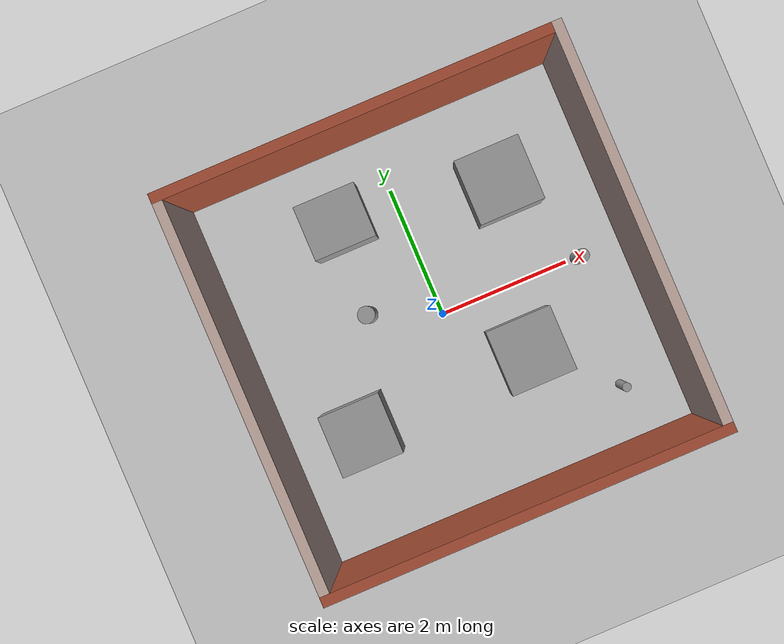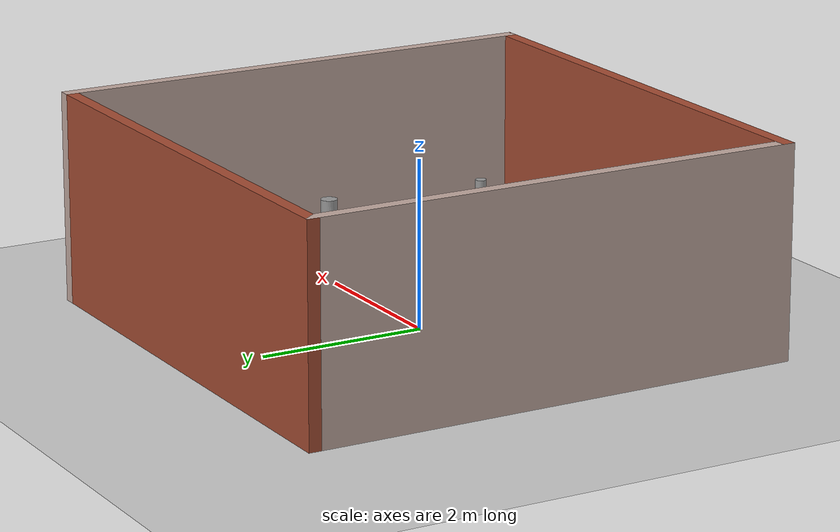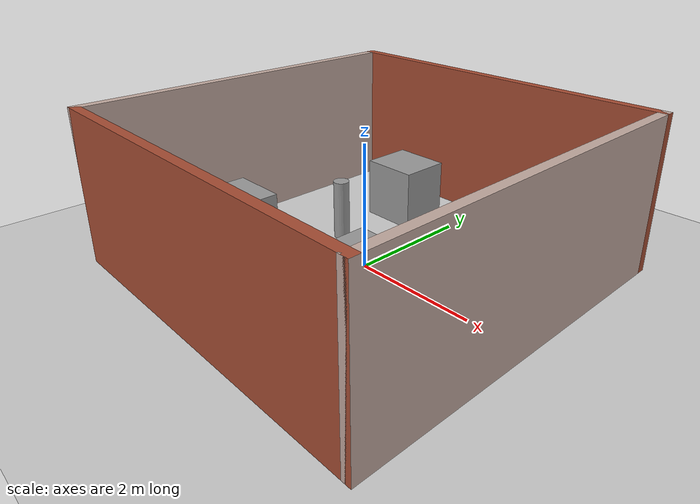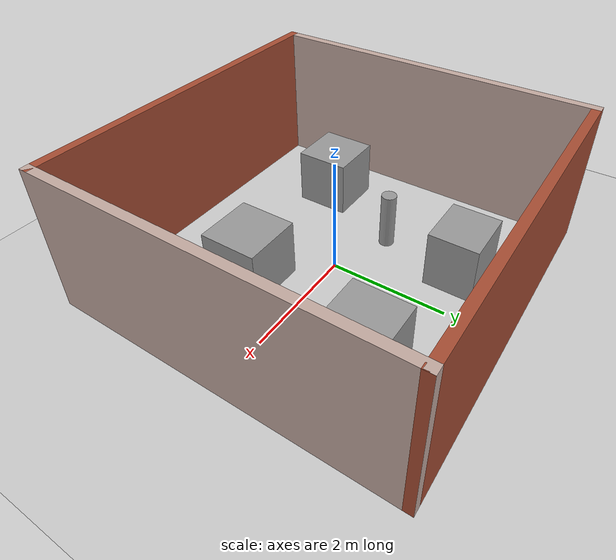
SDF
<sdf version="1.7">
 <world name="default">
  <light name="sun" type="directional">
   <pose>0 0 10 0 -0 0</pose>
   <diffuse>0.8 0.8 0.8 1</diffuse>
   <specular>0.2 0.2 0.2 1</specular>
   <attenuation>
    <range>1000</range>
    <constant>0.9</constant>
    <linear>0.01</linear>
    <quadratic>0.001</quadratic>
   </attenuation>
   <direction>-0.5 0.1 -0.9</direction>
   <spot><inner_angle>0</inner_angle><outer_angle>0</outer_angle><falloff>0</falloff></spot>
  </light>
  <model name="ground_plane">
   <static>1</static>
   <link name="link">
    <collision name="collision">
     <geometry><plane><normal>0 0 1</normal><size>100 100</size></plane></geometry>
     <surface>
      <contact><collide_bitmask>65535</collide_bitmask></contact>
      <friction><ode><mu>100</mu><mu2>50</mu2></ode></friction>
     </surface>
    </collision>
    <visual name="visual">
     <cast_shadows>0</cast_shadows>
     <geometry><plane><normal>0 0 1</normal><size>100 100</size></plane></geometry>
     <material>
      <script><uri>file://media/materials/scripts/gazebo.material</uri><name>Gazebo/Grey</name></script>
     </material>
    </visual>
   </link>
  </model>
  <gravity>0 0 -9.8</gravity>
  <magnetic_field>6e-06 2.3e-05 -4.2e-05</magnetic_field>
  <atmosphere type="adiabatic"/>
  <physics type="ode">
   <max_step_size>0.001</max_step_size>
   <real_time_factor>1</real_time_factor>
   <real_time_update_rate>1000</real_time_update_rate>
  </physics>
  <scene><ambient>0.4 0.4 0.4 1</ambient><background>0.7 0.7 0.7 1</background><shadows>1</shadows></scene>
  <spherical_coordinates>
   <surface_model>EARTH_WGS84</surface_model>
   <latitude_deg>0</latitude_deg>
   <longitude_deg>0</longitude_deg>
   <elevation>0</elevation>
   <heading_deg>0</heading_deg>
  </spherical_coordinates>
  <model name="wall_boundary">
   <pose>-1e-06 0.016444 0 0 -0 0</pose>
   <link name="Wall_0">
    <collision name="Wall_0_Collision">
     <geometry><box><size>6 0.15 2.5</size></box></geometry>
     <pose>0 0 1.25 0 -0 0</pose>
    </collision>
    <visual name="Wall_0_Visual">
     <pose>0 0 1.25 0 -0 0</pose>
     <geometry><box><size>6 0.15 2.5</size></box></geometry>
     <material>
      <script><uri>file://media/materials/scripts/gazebo.material</uri><name>Gazebo/Bricks</name></script>
      <ambient>1 1 1 1</ambient>
     </material>
     <meta><layer>0</layer></meta>
    </visual>
    <pose>-0 -2.925 0 0 -0 0</pose>
   </link>
   <link name="Wall_2">
    <collision name="Wall_2_Collision">
     <geometry><box><size>6 0.15 2.5</size></box></geometry>
     <pose>0 0 1.25 0 -0 0</pose>
    </collision>
    <visual name="Wall_2_Visual">
     <pose>0 0 1.25 0 -0 0</pose>
     <geometry><box><size>6 0.15 2.5</size></box></geometry>
     <material>
      <script><uri>file://media/materials/scripts/gazebo.material</uri><name>Gazebo/Grey</name></script>
      <ambient>0.760784 0.662745 0.627451 1</ambient>
     </material>
     <meta><layer>0</layer></meta>
    </visual>
    <pose>2.925 0 0 0 -0 1.5708</pose>
   </link>
   <link name="Wall_3">
    <collision name="Wall_3_Collision">
     <geometry><box><size>6 0.15 2.5</size></box></geometry>
     <pose>0 0 1.25 0 -0 0</pose>
    </collision>
    <visual name="Wall_3_Visual">
     <pose>0 0 1.25 0 -0 0</pose>
     <geometry><box><size>6 0.15 2.5</size></box></geometry>
     <material>
      <script><uri>file://media/materials/scripts/gazebo.material</uri><name>Gazebo/Bricks</name></script>
      <ambient>1 1 1 1</ambient>
     </material>
     <meta><layer>0</layer></meta>
    </visual>
    <pose>-0 2.925 0 0 -0 3.14159</pose>
   </link>
   <link name="Wall_4">
    <collision name="Wall_4_Collision">
     <geometry><box><size>6 0.15 2.5</size></box></geometry>
     <pose>0 0 1.25 0 -0 0</pose>
    </collision>
    <visual name="Wall_4_Visual">
     <pose>0 0 1.25 0 -0 0</pose>
     <geometry><box><size>6 0.15 2.5</size></box></geometry>
     <material>
      <script><uri>file://media/materials/scripts/gazebo.material</uri><name>Gazebo/Grey</name></script>
      <ambient>0.760784 0.662745 0.627451 1</ambient>
     </material>
     <meta><layer>0</layer></meta>
    </visual>
    <pose>-2.925 0 0 0 -0 -1.5708</pose>
   </link>
   <static>1</static>
  </model>
  <model name="unit_box">
   <pose>1.49821 1.45554 0.500001 0 -3e-06 2e-06</pose>
   <link name="link">
    <inertial>
     <mass>1</mass>
     <inertia>
      <ixx>0.166667</ixx>
      <ixy>0</ixy>
      <ixz>0</ixz>
      <iyy>0.166667</iyy>
      <iyz>0</iyz>
      <izz>0.166667</izz>
     </inertia>
    </inertial>
    <collision name="collision"><geometry><box><size>1 1 1</size></box></geometry></collision>
    <visual name="visual">
     <geometry><box><size>1 1 1</size></box></geometry>
     <material>
      <script><name>Gazebo/Grey</name><uri>file://media/materials/scripts/gazebo.material</uri></script>
     </material>
    </visual>
   </link>
  </model>
  <model name="unit_box_0">
   <pose>-0.912846 1.82987 0.5 -0 -0 -7e-06</pose>
   <link name="link">
    <inertial>
     <mass>1</mass>
     <inertia>
      <ixx>0.166667</ixx>
      <ixy>0</ixy>
      <ixz>0</ixz>
      <iyy>0.166667</iyy>
      <iyz>0</iyz>
      <izz>0.166667</izz>
     </inertia>
    </inertial>
    <collision name="collision"><geometry><box><size>0.946127 0.83452 1</size></box></geometry></collision>
    <visual name="visual">
     <geometry><box><size>0.946127 0.83452 1</size></box></geometry>
     <material>
      <script><name>Gazebo/Grey</name><uri>file://media/materials/scripts/gazebo.material</uri></script>
     </material>
    </visual>
   </link>
  </model>
  <model name="unit_box_1">
   <pose>0.960626 -0.982489 0.499996 -8e-06 5e-06 0.002643</pose>
   <link name="link">
    <inertial>
     <mass>1</mass>
     <inertia>
      <ixx>0.166667</ixx>
      <ixy>0</ixy>
      <ixz>0</ixz>
      <iyy>0.166667</iyy>
      <iyz>0</iyz>
      <izz>0.166667</izz>
     </inertia>
    </inertial>
    <collision name="collision"><geometry><box><size>0.999999 0.999998 1</size></box></geometry></collision>
    <visual name="visual">
     <geometry><box><size>0.999999 0.999998 1</size></box></geometry>
     <material>
      <script><name>Gazebo/Grey</name><uri>file://media/materials/scripts/gazebo.material</uri></script>
     </material>
    </visual>
   </link>
  </model>
  <model name="unit_box_2">
   <pose>-1.77103 -1.13961 0.500002 -0 -6e-06 -6e-06</pose>
   <link name="link">
    <inertial>
     <mass>1</mass>
     <inertia>
      <ixx>0.166667</ixx>
      <ixy>0</ixy>
      <ixz>0</ixz>
      <iyy>0.166667</iyy>
      <iyz>0</iyz>
      <izz>0.166667</izz>
     </inertia>
    </inertial>
    <collision name="collision"><geometry><box><size>0.940852 0.937291 1</size></box></geometry></collision>
    <visual name="visual">
     <geometry><box><size>0.940852 0.937291 1</size></box></geometry>
     <material>
      <script><name>Gazebo/Grey</name><uri>file://media/materials/scripts/gazebo.material</uri></script>
     </material>
    </visual>
   </link>
  </model>
  <model name="unit_cylinder">
   <pose>2.02193 -1.99995 0.503037 -0.0101 -0.011686 0.355923</pose>
   <link name="link">
    <inertial>
     <mass>1</mass>
     <inertia><ixx>0.145833</ixx><ixy>0</ixy><ixz>0</ixz><iyy>0.145833</iyy><iyz>0</iyz><izz>0.125</izz></inertia>
    </inertial>
    <collision name="collision">
     <geometry><cylinder><radius>0.0660976</radius><length>1</length></cylinder></geometry>
    </collision>
    <visual name="visual">
     <geometry><cylinder><radius>0.0660976</radius><length>1</length></cylinder></geometry>
     <material>
      <script><name>Gazebo/Grey</name><uri>file://media/materials/scripts/gazebo.material</uri></script>
     </material>
    </visual>
   </link>
  </model>
  <model name="unit_cylinder_0">
   <pose>-1.01831 0.41867 0.499997 0 -0 1.2e-05</pose>
   <link name="link">
    <inertial>
     <mass>1</mass>
     <inertia><ixx>0.145833</ixx><ixy>0</ixy><ixz>0</ixz><iyy>0.145833</iyy><iyz>0</iyz><izz>0.125</izz></inertia>
    </inertial>
    <collision name="collision">
     <geometry><cylinder><radius>0.130008</radius><length>1</length></cylinder></geometry>
    </collision>
    <visual name="visual">
     <geometry><cylinder><radius>0.130008</radius><length>1</length></cylinder></geometry>
     <material>
      <script><name>Gazebo/Grey</name><uri>file://media/materials/scripts/gazebo.material</uri></script>
     </material>
    </visual>
   </link>
  </model>
  <model name="unit_cylinder_1">
   <pose>2.17317 -0.011075 0.499998 0 -1e-06 3.4e-05</pose>
   <link name="link">
    <inertial>
     <mass>1</mass>
     <inertia><ixx>0.145833</ixx><ixy>0</ixy><ixz>0</ixz><iyy>0.145833</iyy><iyz>0</iyz><izz>0.125</izz></inertia>
    </inertial>
    <collision name="collision">
     <geometry><cylinder><radius>0.100788</radius><length>1</length></cylinder></geometry>
    </collision>
    <visual name="visual">
     <geometry><cylinder><radius>0.100788</radius><length>1</length></cylinder></geometry>
     <material>
      <script><name>Gazebo/Grey</name><uri>file://media/materials/scripts/gazebo.material</uri></script>
     </material>
    </visual>
   </link>
  </model>
 </world>
</sdf>
